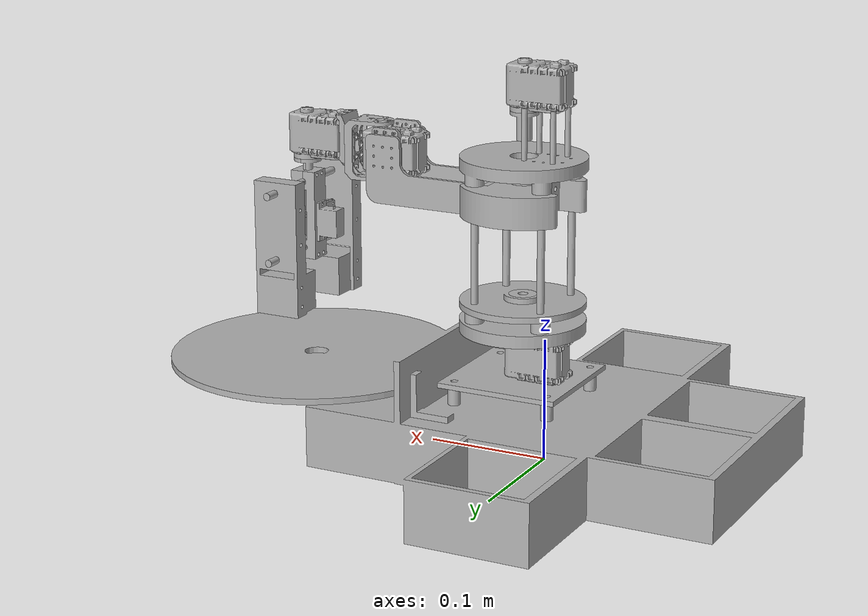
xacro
<?xml version="1.0" ?>
<robot name="scara" xmlns:xacro="http://www.ros.org/wiki/xacro">

<xacro:include filename="$(find scara_description)/urdf/materials.xacro" />
<xacro:include filename="$(find scara_description)/urdf/scara.trans" />
<xacro:include filename="$(find scara_description)/urdf/scara.gazebo" />
<link name="world">
</link>

<link name="base_link">
  <inertial>
    <origin rpy="0 0 0" xyz="0.04098055507239287 -0.0001598330063843479 0.02842913280091773"/>
    <mass value="24.693744487032323"/>
    <inertia ixx="0.120149" ixy="0.000317" ixz="-0.011314" iyy="0.229746" iyz="-1.4e-05" izz="0.335134"/>
  </inertial>
  <visual>
    <origin rpy="0 0 0" xyz="0 0 0"/>
    <geometry>
      <mesh filename="package://scara_description/meshes/base_link.stl" scale="0.001 0.001 0.001"/>
    </geometry>
    <material name="silver"/>
  </visual>
  <collision>
    <origin rpy="0 0 0" xyz="0 0 0"/>
    <geometry>
      <mesh filename="package://scara_description/meshes/base_link.stl" scale="0.001 0.001 0.001"/>
    </geometry>
  </collision>
</link>

<link name="base_spacers_1_1">
  <inertial>
    <origin rpy="0 0 0" xyz="-3.5291908284662554e-13 1.3877787807814457e-17 0.007499999999999972"/>
    <mass value="0.0059187605593633225"/>
    <inertia ixx="0.0" ixy="-0.0" ixz="0.0" iyy="0.0" iyz="0.0" izz="0.0"/>
  </inertial>
  <visual>
    <origin rpy="0 0 0" xyz="0.0211 0.04 -0.05"/>
    <geometry>
      <mesh filename="package://scara_description/meshes/base_spacers_1_1.stl" scale="0.001 0.001 0.001"/>
    </geometry>
    <material name="silver"/>
  </visual>
  <collision>
    <origin rpy="0 0 0" xyz="0.0211 0.04 -0.05"/>
    <geometry>
      <mesh filename="package://scara_description/meshes/base_spacers_1_1.stl" scale="0.001 0.001 0.001"/>
    </geometry>
  </collision>
</link>

<link name="prismatic_top_1">
  <inertial>
    <origin rpy="0 0 0" xyz="-0.028137223323182657 0.028284000000033876 -0.0007283565591307828"/>
    <mass value="0.624700515538458"/>
    <inertia ixx="0.000428" ixy="-0.0" ixz="-0.0" iyy="0.000426" iyz="-0.0" izz="0.000835"/>
  </inertial>
  <visual>
    <origin rpy="0 0 0" xyz="-0.048284 0.028284 -0.241"/>
    <geometry>
      <mesh filename="package://scara_description/meshes/prismatic_top_1.stl" scale="0.001 0.001 0.001"/>
    </geometry>
    <material name="silver"/>
  </visual>
  <collision>
    <origin rpy="0 0 0" xyz="-0.048284 0.028284 -0.241"/>
    <geometry>
      <mesh filename="package://scara_description/meshes/prismatic_top_1.stl" scale="0.001 0.001 0.001"/>
    </geometry>
  </collision>
</link>

<link name="lead_screw_interface_1">
  <inertial>
    <origin rpy="0 0 0" xyz="-0.005749999999894277 0.005749999999999306 0.0020408507566134493"/>
    <mass value="0.008212280147496571"/>
    <inertia ixx="0.0" ixy="-0.0" ixz="0.0" iyy="0.0" iyz="-0.0" izz="1e-06"/>
  </inertial>
  <visual>
    <origin rpy="0 0 0" xyz="-0.02575 0.00575 -0.224854"/>
    <geometry>
      <mesh filename="package://scara_description/meshes/lead_screw_interface_1.stl" scale="0.001 0.001 0.001"/>
    </geometry>
    <material name="silver"/>
  </visual>
  <collision>
    <origin rpy="0 0 0" xyz="-0.02575 0.00575 -0.224854"/>
    <geometry>
      <mesh filename="package://scara_description/meshes/lead_screw_interface_1.stl" scale="0.001 0.001 0.001"/>
    </geometry>
  </collision>
</link>

<link name="m1_link_1">
  <inertial>
    <origin rpy="0 0 0" xyz="0.05199188121380099 0.014999999911798845 -0.000617726368097371"/>
    <mass value="0.20309503106453125"/>
    <inertia ixx="0.000114" ixy="0.0" ixz="-4.6e-05" iyy="0.000312" iyz="0.0" izz="0.000354"/>
  </inertial>
  <visual>
    <origin rpy="0 0 0" xyz="-0.04 0.015 -0.218604"/>
    <geometry>
      <mesh filename="package://scara_description/meshes/m1_link_1.stl" scale="0.001 0.001 0.001"/>
    </geometry>
    <material name="silver"/>
  </visual>
  <collision>
    <origin rpy="0 0 0" xyz="-0.04 0.015 -0.218604"/>
    <geometry>
      <mesh filename="package://scara_description/meshes/m1_link_1.stl" scale="0.001 0.001 0.001"/>
    </geometry>
  </collision>
</link>

<link name="prismatic_link_interface_1">
  <inertial>
    <origin rpy="0 0 0" xyz="-0.02844090670640458 0.028440978811119566 0.056354310270251756"/>
    <mass value="0.999783598473135"/>
    <inertia ixx="0.000918" ixy="-4e-06" ixz="0.0" iyy="0.000366" iyz="0.0" izz="0.001179"/>
  </inertial>
  <visual>
    <origin rpy="0 0 0" xyz="-0.048284 0.028284 -0.156"/>
    <geometry>
      <mesh filename="package://scara_description/meshes/prismatic_link_interface_1.stl" scale="0.001 0.001 0.001"/>
    </geometry>
    <material name="silver"/>
  </visual>
  <collision>
    <origin rpy="0 0 0" xyz="-0.048284 0.028284 -0.156"/>
    <geometry>
      <mesh filename="package://scara_description/meshes/prismatic_link_interface_1.stl" scale="0.001 0.001 0.001"/>
    </geometry>
  </collision>
</link>

<link name="servo_1_1">
  <inertial>
    <origin rpy="0 0 0" xyz="0.017737722029041787 -0.013468907614335956 0.01705858273938929"/>
    <mass value="0.04244091097100989"/>
    <inertia ixx="7e-06" ixy="0.0" ixz="-0.0" iyy="1.2e-05" iyz="-0.0" izz="1e-05"/>
  </inertial>
  <visual>
    <origin rpy="0 0 0" xyz="0.0105 -0.0135 -0.069"/>
    <geometry>
      <mesh filename="package://scara_description/meshes/servo_1_1.stl" scale="0.001 0.001 0.001"/>
    </geometry>
    <material name="silver"/>
  </visual>
  <collision>
    <origin rpy="0 0 0" xyz="0.0105 -0.0135 -0.069"/>
    <geometry>
      <mesh filename="package://scara_description/meshes/servo_1_1.stl" scale="0.001 0.001 0.001"/>
    </geometry>
  </collision>
</link>

<link name="horn_v1_1">
  <inertial>
    <origin rpy="0 0 0" xyz="0.00233939363651281 -7.528689043717618e-14 -3.1535797248571917e-07"/>
    <mass value="0.00024575529409632613"/>
    <inertia ixx="0.0" ixy="0.0" ixz="0.0" iyy="0.0" iyz="-0.0" izz="0.0"/>
  </inertial>
  <visual>
    <origin rpy="0 0 0" xyz="-0.211512 0.0005 -0.177566"/>
    <geometry>
      <mesh filename="package://scara_description/meshes/horn_v1_1.stl" scale="0.001 0.001 0.001"/>
    </geometry>
    <material name="silver"/>
  </visual>
  <collision>
    <origin rpy="0 0 0" xyz="-0.211512 0.0005 -0.177566"/>
    <geometry>
      <mesh filename="package://scara_description/meshes/horn_v1_1.stl" scale="0.001 0.001 0.001"/>
    </geometry>
  </collision>
</link>

<link name="servo_horn_extension_1_1">
  <inertial>
    <origin rpy="0 0 0" xyz="0.0010001688732809988 0.009999999999929657 -3.1535798755699673e-07"/>
    <mass value="0.0022663227698107727"/>
    <inertia ixx="0.0" ixy="0.0" ixz="0.0" iyy="0.0" iyz="-0.0" izz="0.0"/>
  </inertial>
  <visual>
    <origin rpy="0 0 0" xyz="-0.214942 -0.0141 -0.177566"/>
    <geometry>
      <mesh filename="package://scara_description/meshes/servo_horn_extension_1_1.stl" scale="0.001 0.001 0.001"/>
    </geometry>
    <material name="silver"/>
  </visual>
  <collision>
    <origin rpy="0 0 0" xyz="-0.214942 -0.0141 -0.177566"/>
    <geometry>
      <mesh filename="package://scara_description/meshes/servo_horn_extension_1_1.stl" scale="0.001 0.001 0.001"/>
    </geometry>
  </collision>
</link>

<link name="servo_horn_extension_3_1">
  <inertial>
    <origin rpy="0 0 0" xyz="-0.000999831126719114 0.0099999999999198 -3.1535798755699673e-07"/>
    <mass value="0.0022663227698107727"/>
    <inertia ixx="0.0" ixy="0.0" ixz="0.0" iyy="0.0" iyz="-0.0" izz="0.0"/>
  </inertial>
  <visual>
    <origin rpy="0 0 0" xyz="-0.213342 -0.0141 -0.177566"/>
    <geometry>
      <mesh filename="package://scara_description/meshes/servo_horn_extension_3_1.stl" scale="0.001 0.001 0.001"/>
    </geometry>
    <material name="silver"/>
  </visual>
  <collision>
    <origin rpy="0 0 0" xyz="-0.213342 -0.0141 -0.177566"/>
    <geometry>
      <mesh filename="package://scara_description/meshes/servo_horn_extension_3_1.stl" scale="0.001 0.001 0.001"/>
    </geometry>
  </collision>
</link>

<link name="servo_horn_extension_2_1">
  <inertial>
    <origin rpy="0 0 0" xyz="-0.0009998311267075122 -0.010000000000071245 -3.1535800265602987e-07"/>
    <mass value="0.0022663227698107727"/>
    <inertia ixx="0.0" ixy="0.0" ixz="0.0" iyy="0.0" iyz="-0.0" izz="0.0"/>
  </inertial>
  <visual>
    <origin rpy="0 0 0" xyz="-0.213342 0.0151 -0.177566"/>
    <geometry>
      <mesh filename="package://scara_description/meshes/servo_horn_extension_2_1.stl" scale="0.001 0.001 0.001"/>
    </geometry>
    <material name="silver"/>
  </visual>
  <collision>
    <origin rpy="0 0 0" xyz="-0.213342 0.0151 -0.177566"/>
    <geometry>
      <mesh filename="package://scara_description/meshes/servo_horn_extension_2_1.stl" scale="0.001 0.001 0.001"/>
    </geometry>
  </collision>
</link>

<link name="servo_horn_extension_4_1">
  <inertial>
    <origin rpy="0 0 0" xyz="0.0010001688732924618 -0.010000000000070357 -3.153580021564295e-07"/>
    <mass value="0.0022663227698107727"/>
    <inertia ixx="0.0" ixy="0.0" ixz="0.0" iyy="0.0" iyz="-0.0" izz="0.0"/>
  </inertial>
  <visual>
    <origin rpy="0 0 0" xyz="-0.214942 0.0151 -0.177566"/>
    <geometry>
      <mesh filename="package://scara_description/meshes/servo_horn_extension_4_1.stl" scale="0.001 0.001 0.001"/>
    </geometry>
    <material name="silver"/>
  </visual>
  <collision>
    <origin rpy="0 0 0" xyz="-0.214942 0.0151 -0.177566"/>
    <geometry>
      <mesh filename="package://scara_description/meshes/servo_horn_extension_4_1.stl" scale="0.001 0.001 0.001"/>
    </geometry>
  </collision>
</link>

<link name="prismatic_servo_standoffs_4_1">
  <inertial>
    <origin rpy="0 0 0" xyz="-1.3708305324211523e-13 2.914335439641036e-15 0.020250000000028634"/>
    <mass value="0.0033684221227162628"/>
    <inertia ixx="0.0" ixy="0.0" ixz="-0.0" iyy="0.0" iyz="0.0" izz="0.0"/>
  </inertial>
  <visual>
    <origin rpy="0 0 0" xyz="-0.0135 -0.0135 -0.246"/>
    <geometry>
      <mesh filename="package://scara_description/meshes/prismatic_servo_standoffs_4_1.stl" scale="0.001 0.001 0.001"/>
    </geometry>
    <material name="silver"/>
  </visual>
  <collision>
    <origin rpy="0 0 0" xyz="-0.0135 -0.0135 -0.246"/>
    <geometry>
      <mesh filename="package://scara_description/meshes/prismatic_servo_standoffs_4_1.stl" scale="0.001 0.001 0.001"/>
    </geometry>
  </collision>
</link>

<link name="prismatic_servo_standoffs_3_1">
  <inertial>
    <origin rpy="0 0 0" xyz="-1.4011708460159866e-13 2.9160701631170127e-15 0.020250000000028634"/>
    <mass value="0.0033684221227162628"/>
    <inertia ixx="0.0" ixy="0.0" ixz="0.0" iyy="0.0" iyz="0.0" izz="0.0"/>
  </inertial>
  <visual>
    <origin rpy="0 0 0" xyz="0.0105 -0.0135 -0.246"/>
    <geometry>
      <mesh filename="package://scara_description/meshes/prismatic_servo_standoffs_3_1.stl" scale="0.001 0.001 0.001"/>
    </geometry>
    <material name="silver"/>
  </visual>
  <collision>
    <origin rpy="0 0 0" xyz="0.0105 -0.0135 -0.246"/>
    <geometry>
      <mesh filename="package://scara_description/meshes/prismatic_servo_standoffs_3_1.stl" scale="0.001 0.001 0.001"/>
    </geometry>
  </collision>
</link>

<link name="prismatic_servo_standoffs_1_1">
  <inertial>
    <origin rpy="0 0 0" xyz="-1.4011881932507464e-13 -4.85722573273506e-16 0.02025000000002869"/>
    <mass value="0.003368422122716262"/>
    <inertia ixx="0.0" ixy="0.0" ixz="0.0" iyy="0.0" iyz="0.0" izz="0.0"/>
  </inertial>
  <visual>
    <origin rpy="0 0 0" xyz="0.0105 0.0135 -0.246"/>
    <geometry>
      <mesh filename="package://scara_description/meshes/prismatic_servo_standoffs_1_1.stl" scale="0.001 0.001 0.001"/>
    </geometry>
    <material name="silver"/>
  </visual>
  <collision>
    <origin rpy="0 0 0" xyz="0.0105 0.0135 -0.246"/>
    <geometry>
      <mesh filename="package://scara_description/meshes/prismatic_servo_standoffs_1_1.stl" scale="0.001 0.001 0.001"/>
    </geometry>
  </collision>
</link>

<link name="prismatic_servo_standoffs_2_1">
  <inertial>
    <origin rpy="0 0 0" xyz="-1.3708652268906718e-13 -4.77048955893622e-16 0.020250000000028634"/>
    <mass value="0.0033684221227162628"/>
    <inertia ixx="0.0" ixy="0.0" ixz="0.0" iyy="0.0" iyz="0.0" izz="0.0"/>
  </inertial>
  <visual>
    <origin rpy="0 0 0" xyz="-0.0135 0.0135 -0.246"/>
    <geometry>
      <mesh filename="package://scara_description/meshes/prismatic_servo_standoffs_2_1.stl" scale="0.001 0.001 0.001"/>
    </geometry>
    <material name="silver"/>
  </visual>
  <collision>
    <origin rpy="0 0 0" xyz="-0.0135 0.0135 -0.246"/>
    <geometry>
      <mesh filename="package://scara_description/meshes/prismatic_servo_standoffs_2_1.stl" scale="0.001 0.001 0.001"/>
    </geometry>
  </collision>
</link>

<link name="base_spacers_2_1">
  <inertial>
    <origin rpy="0 0 0" xyz="-3.529086745057697e-13 1.3877787807814457e-17 0.007499999999999972"/>
    <mass value="0.0059187605593633225"/>
    <inertia ixx="0.0" ixy="-0.0" ixz="0.0" iyy="0.0" iyz="0.0" izz="0.0"/>
  </inertial>
  <visual>
    <origin rpy="0 0 0" xyz="0.02 -0.04 -0.05"/>
    <geometry>
      <mesh filename="package://scara_description/meshes/base_spacers_2_1.stl" scale="0.001 0.001 0.001"/>
    </geometry>
    <material name="silver"/>
  </visual>
  <collision>
    <origin rpy="0 0 0" xyz="0.02 -0.04 -0.05"/>
    <geometry>
      <mesh filename="package://scara_description/meshes/base_spacers_2_1.stl" scale="0.001 0.001 0.001"/>
    </geometry>
  </collision>
</link>

<link name="base_spacers_3_1">
  <inertial>
    <origin rpy="0 0 0" xyz="-3.5290520505881773e-13 1.3877787807814457e-17 0.007499999999999972"/>
    <mass value="0.0059187605593633225"/>
    <inertia ixx="0.0" ixy="-0.0" ixz="0.0" iyy="0.0" iyz="0.0" izz="0.0"/>
  </inertial>
  <visual>
    <origin rpy="0 0 0" xyz="-0.06 -0.04 -0.05"/>
    <geometry>
      <mesh filename="package://scara_description/meshes/base_spacers_3_1.stl" scale="0.001 0.001 0.001"/>
    </geometry>
    <material name="silver"/>
  </visual>
  <collision>
    <origin rpy="0 0 0" xyz="-0.06 -0.04 -0.05"/>
    <geometry>
      <mesh filename="package://scara_description/meshes/base_spacers_3_1.stl" scale="0.001 0.001 0.001"/>
    </geometry>
  </collision>
</link>

<link name="base_spacers_4_1">
  <inertial>
    <origin rpy="0 0 0" xyz="-3.5291908284662554e-13 1.3877787807814457e-17 0.007499999999999986"/>
    <mass value="0.0059187605593633225"/>
    <inertia ixx="0.0" ixy="-0.0" ixz="0.0" iyy="0.0" iyz="-0.0" izz="0.0"/>
  </inertial>
  <visual>
    <origin rpy="0 0 0" xyz="-0.0589 0.04 -0.05"/>
    <geometry>
      <mesh filename="package://scara_description/meshes/base_spacers_4_1.stl" scale="0.001 0.001 0.001"/>
    </geometry>
    <material name="silver"/>
  </visual>
  <collision>
    <origin rpy="0 0 0" xyz="-0.0589 0.04 -0.05"/>
    <geometry>
      <mesh filename="package://scara_description/meshes/base_spacers_4_1.stl" scale="0.001 0.001 0.001"/>
    </geometry>
  </collision>
</link>

<link name="lower_servo_housing_1">
  <inertial>
    <origin rpy="0 0 0" xyz="-0.0061101239303172905 -0.0039000000000329895 -0.028236386254481632"/>
    <mass value="0.07090622458440883"/>
    <inertia ixx="4.9e-05" ixy="-0.0" ixz="-1e-06" iyy="4.8e-05" iyz="0.0" izz="3e-06"/>
  </inertial>
  <visual>
    <origin rpy="0 0 0" xyz="-0.213912 -0.0034 -0.211116"/>
    <geometry>
      <mesh filename="package://scara_description/meshes/lower_servo_housing_1.stl" scale="0.001 0.001 0.001"/>
    </geometry>
    <material name="silver"/>
  </visual>
  <collision>
    <origin rpy="0 0 0" xyz="-0.213912 -0.0034 -0.211116"/>
    <geometry>
      <mesh filename="package://scara_description/meshes/lower_servo_housing_1.stl" scale="0.001 0.001 0.001"/>
    </geometry>
  </collision>
</link>

<link name="microsg9_1_1">
  <inertial>
    <origin rpy="0 0 0" xyz="-0.00608184495381614 1.8860040143118748e-09 -0.013486331593379752"/>
    <mass value="0.05498776027444273"/>
    <inertia ixx="3e-06" ixy="-0.0" ixz="-0.0" iyy="5e-06" iyz="-0.0" izz="4e-06"/>
  </inertial>
  <visual>
    <origin rpy="0 0 0" xyz="-0.203212 0.0005 -0.186066"/>
    <geometry>
      <mesh filename="package://scara_description/meshes/microsg9_1_1.stl" scale="0.001 0.001 0.001"/>
    </geometry>
    <material name="silver"/>
  </visual>
  <collision>
    <origin rpy="0 0 0" xyz="-0.203212 0.0005 -0.186066"/>
    <geometry>
      <mesh filename="package://scara_description/meshes/microsg9_1_1.stl" scale="0.001 0.001 0.001"/>
    </geometry>
  </collision>
</link>

<link name="linear_motion_rail_1_1">
  <inertial>
    <origin rpy="0 0 0" xyz="1.6887328374570743e-07 -8.509458328948005e-14 -3.1535799438486833e-07"/>
    <mass value="0.028410050684943296"/>
    <inertia ixx="3.9e-05" ixy="0.0" ixz="0.0" iyy="0.0" iyz="-0.0" izz="3.9e-05"/>
  </inertial>
  <visual>
    <origin rpy="0 0 0" xyz="-0.213912 0.0005 -0.205116"/>
    <geometry>
      <mesh filename="package://scara_description/meshes/linear_motion_rail_1_1.stl" scale="0.001 0.001 0.001"/>
    </geometry>
    <material name="silver"/>
  </visual>
  <collision>
    <origin rpy="0 0 0" xyz="-0.213912 0.0005 -0.205116"/>
    <geometry>
      <mesh filename="package://scara_description/meshes/linear_motion_rail_1_1.stl" scale="0.001 0.001 0.001"/>
    </geometry>
  </collision>
</link>

<link name="linear_motion_rail_2_1">
  <inertial>
    <origin rpy="0 0 0" xyz="1.6887328910253352e-07 -6.848569020917461e-14 -3.153579943293572e-07"/>
    <mass value="0.028410050684943296"/>
    <inertia ixx="3.9e-05" ixy="0.0" ixz="0.0" iyy="0.0" iyz="-0.0" izz="3.9e-05"/>
  </inertial>
  <visual>
    <origin rpy="0 0 0" xyz="-0.213912 0.0005 -0.150516"/>
    <geometry>
      <mesh filename="package://scara_description/meshes/linear_motion_rail_2_1.stl" scale="0.001 0.001 0.001"/>
    </geometry>
    <material name="silver"/>
  </visual>
  <collision>
    <origin rpy="0 0 0" xyz="-0.213912 0.0005 -0.150516"/>
    <geometry>
      <mesh filename="package://scara_description/meshes/linear_motion_rail_2_1.stl" scale="0.001 0.001 0.001"/>
    </geometry>
  </collision>
</link>

<link name="side_connection_2_1">
  <inertial>
    <origin rpy="0 0 0" xyz="0.21450016887328938 0.11927214315760507 -0.22077970063579894"/>
    <mass value="0.57885885536208"/>
    <inertia ixx="0.000673" ixy="-0.0" ixz="0.0" iyy="0.000697" iyz="7.4e-05" izz="0.000108"/>
  </inertial>
  <visual>
    <origin rpy="0 0 0" xyz="0.000588 0.160412 -0.370231"/>
    <geometry>
      <mesh filename="package://scara_description/meshes/side_connection_2_1.stl" scale="0.001 0.001 0.001"/>
    </geometry>
    <material name="silver"/>
  </visual>
  <collision>
    <origin rpy="0 0 0" xyz="0.000588 0.160412 -0.370231"/>
    <geometry>
      <mesh filename="package://scara_description/meshes/side_connection_2_1.stl" scale="0.001 0.001 0.001"/>
    </geometry>
  </collision>
</link>

<link name="side_connection_1_1">
  <inertial>
    <origin rpy="0 0 0" xyz="0.08650016887328882 0.2005518568422578 -0.2207797006357743"/>
    <mass value="0.5788588553620798"/>
    <inertia ixx="0.000673" ixy="0.0" ixz="0.0" iyy="0.000697" iyz="-7.4e-05" izz="0.000108"/>
  </inertial>
  <visual>
    <origin rpy="0 0 0" xyz="-0.127412 0.160412 -0.370231"/>
    <geometry>
      <mesh filename="package://scara_description/meshes/side_connection_1_1.stl" scale="0.001 0.001 0.001"/>
    </geometry>
    <material name="silver"/>
  </visual>
  <collision>
    <origin rpy="0 0 0" xyz="-0.127412 0.160412 -0.370231"/>
    <geometry>
      <mesh filename="package://scara_description/meshes/side_connection_1_1.stl" scale="0.001 0.001 0.001"/>
    </geometry>
  </collision>
</link>

<link name="upper_servo_housing_1">
  <inertial>
    <origin rpy="0 0 0" xyz="0.006600449857643964 -7.900505336749797e-14 -0.04335454786903861"/>
    <mass value="0.07409792845105563"/>
    <inertia ixx="4.9e-05" ixy="0.0" ixz="1e-06" iyy="4.8e-05" iyz="0.0" izz="3e-06"/>
  </inertial>
  <visual>
    <origin rpy="0 0 0" xyz="-0.213912 0.0005 -0.224616"/>
    <geometry>
      <mesh filename="package://scara_description/meshes/upper_servo_housing_1.stl" scale="0.001 0.001 0.001"/>
    </geometry>
    <material name="silver"/>
  </visual>
  <collision>
    <origin rpy="0 0 0" xyz="-0.213912 0.0005 -0.224616"/>
    <geometry>
      <mesh filename="package://scara_description/meshes/upper_servo_housing_1.stl" scale="0.001 0.001 0.001"/>
    </geometry>
  </collision>
</link>

<link name="608_bearing_1">
  <inertial>
    <origin rpy="0 0 0" xyz="6.050715484207103e-14 2.271819970785277e-17 0.0035000000000050824"/>
    <mass value="0.019086461460050417"/>
    <inertia ixx="1e-06" ixy="-0.0" ixz="-0.0" iyy="1e-06" iyz="-0.0" izz="1e-06"/>
  </inertial>
  <visual>
    <origin rpy="0 0 0" xyz="-0.02 -0.0 -0.1285"/>
    <geometry>
      <mesh filename="package://scara_description/meshes/608_bearing_1.stl" scale="0.001 0.001 0.001"/>
    </geometry>
    <material name="silver"/>
  </visual>
  <collision>
    <origin rpy="0 0 0" xyz="-0.02 -0.0 -0.1285"/>
    <geometry>
      <mesh filename="package://scara_description/meshes/608_bearing_1.stl" scale="0.001 0.001 0.001"/>
    </geometry>
  </collision>
</link>

<link name="lead_screw_bottom_plate_1">
  <inertial>
    <origin rpy="0 0 0" xyz="-0.0282839999998628 0.028284000000000017 0.002637274347841445"/>
    <mass value="0.30695093010270136"/>
    <inertia ixx="0.000191" ixy="-0.0" ixz="0.0" iyy="0.000191" iyz="0.0" izz="0.00038"/>
  </inertial>
  <visual>
    <origin rpy="0 0 0" xyz="-0.048284 0.028284 -0.126"/>
    <geometry>
      <mesh filename="package://scara_description/meshes/lead_screw_bottom_plate_1.stl" scale="0.001 0.001 0.001"/>
    </geometry>
    <material name="silver"/>
  </visual>
  <collision>
    <origin rpy="0 0 0" xyz="-0.048284 0.028284 -0.126"/>
    <geometry>
      <mesh filename="package://scara_description/meshes/lead_screw_bottom_plate_1.stl" scale="0.001 0.001 0.001"/>
    </geometry>
  </collision>
</link>

<link name="prismatic_rod_1">
  <inertial>
    <origin rpy="0 0 0" xyz="2.71247465398472e-07 -2.712474654054109e-07 0.06500000000001362"/>
    <mass value="0.02885395772689541"/>
    <inertia ixx="4.1e-05" ixy="-0.0" ixz="0.0" iyy="4.1e-05" iyz="-0.0" izz="0.0"/>
  </inertial>
  <visual>
    <origin rpy="0 0 0" xyz="-0.048284 0.028284 -0.111"/>
    <geometry>
      <mesh filename="package://scara_description/meshes/prismatic_rod_1.stl" scale="0.001 0.001 0.001"/>
    </geometry>
    <material name="silver"/>
  </visual>
  <collision>
    <origin rpy="0 0 0" xyz="-0.048284 0.028284 -0.111"/>
    <geometry>
      <mesh filename="package://scara_description/meshes/prismatic_rod_1.stl" scale="0.001 0.001 0.001"/>
    </geometry>
  </collision>
</link>

<link name="prismatic_rod_3">
  <inertial>
    <origin rpy="0 0 0" xyz="-2.71247465398472e-07 -2.712474654054109e-07 0.0650000000000137"/>
    <mass value="0.02885395772689541"/>
    <inertia ixx="4.1e-05" ixy="-0.0" ixz="0.0" iyy="4.1e-05" iyz="-0.0" izz="0.0"/>
  </inertial>
  <visual>
    <origin rpy="0 0 0" xyz="0.008284 0.028284 -0.111"/>
    <geometry>
      <mesh filename="package://scara_description/meshes/prismatic_rod_3.stl" scale="0.001 0.001 0.001"/>
    </geometry>
    <material name="silver"/>
  </visual>
  <collision>
    <origin rpy="0 0 0" xyz="0.008284 0.028284 -0.111"/>
    <geometry>
      <mesh filename="package://scara_description/meshes/prismatic_rod_3.stl" scale="0.001 0.001 0.001"/>
    </geometry>
  </collision>
</link>

<link name="prismatic_rod_2">
  <inertial>
    <origin rpy="0 0 0" xyz="2.7124746545398315e-07 2.7124746540194145e-07 0.06500000000001356"/>
    <mass value="0.02885395772689541"/>
    <inertia ixx="4.1e-05" ixy="-0.0" ixz="0.0" iyy="4.1e-05" iyz="0.0" izz="0.0"/>
  </inertial>
  <visual>
    <origin rpy="0 0 0" xyz="-0.048284 -0.028284 -0.111"/>
    <geometry>
      <mesh filename="package://scara_description/meshes/prismatic_rod_2.stl" scale="0.001 0.001 0.001"/>
    </geometry>
    <material name="silver"/>
  </visual>
  <collision>
    <origin rpy="0 0 0" xyz="-0.048284 -0.028284 -0.111"/>
    <geometry>
      <mesh filename="package://scara_description/meshes/prismatic_rod_2.stl" scale="0.001 0.001 0.001"/>
    </geometry>
  </collision>
</link>

<link name="prismatic_rod_4">
  <inertial>
    <origin rpy="0 0 0" xyz="-2.7124746546959566e-07 2.712474654366359e-07 0.06500000000001362"/>
    <mass value="0.02885395772689541"/>
    <inertia ixx="4.1e-05" ixy="-0.0" ixz="0.0" iyy="4.1e-05" iyz="-0.0" izz="0.0"/>
  </inertial>
  <visual>
    <origin rpy="0 0 0" xyz="0.008284 -0.028284 -0.111"/>
    <geometry>
      <mesh filename="package://scara_description/meshes/prismatic_rod_4.stl" scale="0.001 0.001 0.001"/>
    </geometry>
    <material name="silver"/>
  </visual>
  <collision>
    <origin rpy="0 0 0" xyz="0.008284 -0.028284 -0.111"/>
    <geometry>
      <mesh filename="package://scara_description/meshes/prismatic_rod_4.stl" scale="0.001 0.001 0.001"/>
    </geometry>
  </collision>
</link>

<link name="prismatic_bottom_1">
  <inertial>
    <origin rpy="0 0 0" xyz="7.427392034742297e-14 8.702372613586493e-17 0.005694878612804946"/>
    <mass value="0.6547974129828106"/>
    <inertia ixx="0.00043" ixy="0.0" ixz="0.0" iyy="0.00043" iyz="0.0" izz="0.00084"/>
  </inertial>
  <visual>
    <origin rpy="0 0 0" xyz="-0.02 -0.0 -0.106"/>
    <geometry>
      <mesh filename="package://scara_description/meshes/prismatic_bottom_1.stl" scale="0.001 0.001 0.001"/>
    </geometry>
    <material name="silver"/>
  </visual>
  <collision>
    <origin rpy="0 0 0" xyz="-0.02 -0.0 -0.106"/>
    <geometry>
      <mesh filename="package://scara_description/meshes/prismatic_bottom_1.stl" scale="0.001 0.001 0.001"/>
    </geometry>
  </collision>
</link>

<link name="fp04_f2_1_1">
  <inertial>
    <origin rpy="0 0 0" xyz="0.01508028274136311 2.284864526847538e-06 0.02099968464211277"/>
    <mass value="0.057238335357429025"/>
    <inertia ixx="2.3e-05" ixy="-0.0" ixz="0.0" iyy="2.5e-05" iyz="0.0" izz="1e-05"/>
  </inertial>
  <visual>
    <origin rpy="0 0 0" xyz="-0.146412 0.0005 -0.216616"/>
    <geometry>
      <mesh filename="package://scara_description/meshes/fp04_f2_1_1.stl" scale="0.001 0.001 0.001"/>
    </geometry>
    <material name="silver"/>
  </visual>
  <collision>
    <origin rpy="0 0 0" xyz="-0.146412 0.0005 -0.216616"/>
    <geometry>
      <mesh filename="package://scara_description/meshes/fp04_f2_1_1.stl" scale="0.001 0.001 0.001"/>
    </geometry>
  </collision>
</link>

<link name="fp04_f6_1_1">
  <inertial>
    <origin rpy="0 0 0" xyz="-0.007999831126722146 0.003162426375285599 0.016031725393745366"/>
    <mass value="0.02417691266422109"/>
    <inertia ixx="4e-06" ixy="0.0" ixz="0.0" iyy="5e-06" iyz="-0.0" izz="1e-06"/>
  </inertial>
  <visual>
    <origin rpy="0 0 0" xyz="-0.139912 -0.013 -0.221616"/>
    <geometry>
      <mesh filename="package://scara_description/meshes/fp04_f6_1_1.stl" scale="0.001 0.001 0.001"/>
    </geometry>
    <material name="silver"/>
  </visual>
  <collision>
    <origin rpy="0 0 0" xyz="-0.139912 -0.013 -0.221616"/>
    <geometry>
      <mesh filename="package://scara_description/meshes/fp04_f6_1_1.stl" scale="0.001 0.001 0.001"/>
    </geometry>
  </collision>
</link>

<link name="servo_3_1">
  <inertial>
    <origin rpy="0 0 0" xyz="-0.006262109097683488 0.013468907614331579 0.014941101902721271"/>
    <mass value="0.04244091097100989"/>
    <inertia ixx="7e-06" ixy="-0.0" ixz="0.0" iyy="1.2e-05" iyz="-0.0" izz="1e-05"/>
  </inertial>
  <visual>
    <origin rpy="0 0 0" xyz="-0.139912 0.014 -0.221616"/>
    <geometry>
      <mesh filename="package://scara_description/meshes/servo_3_1.stl" scale="0.001 0.001 0.001"/>
    </geometry>
    <material name="silver"/>
  </visual>
  <collision>
    <origin rpy="0 0 0" xyz="-0.139912 0.014 -0.221616"/>
    <geometry>
      <mesh filename="package://scara_description/meshes/servo_3_1.stl" scale="0.001 0.001 0.001"/>
    </geometry>
  </collision>
</link>

<link name="servo_4_1">
  <inertial>
    <origin rpy="0 0 0" xyz="0.023237890902313346 0.007968907614231729 -0.017058898097368824"/>
    <mass value="0.04244091097100989"/>
    <inertia ixx="7e-06" ixy="-0.0" ixz="0.0" iyy="1.2e-05" iyz="-0.0" izz="1e-05"/>
  </inertial>
  <visual>
    <origin rpy="0 0 0" xyz="-0.177912 0.0085 -0.261616"/>
    <geometry>
      <mesh filename="package://scara_description/meshes/servo_4_1.stl" scale="0.001 0.001 0.001"/>
    </geometry>
    <material name="silver"/>
  </visual>
  <collision>
    <origin rpy="0 0 0" xyz="-0.177912 0.0085 -0.261616"/>
    <geometry>
      <mesh filename="package://scara_description/meshes/servo_4_1.stl" scale="0.001 0.001 0.001"/>
    </geometry>
  </collision>
</link>

<link name="fp04_f6_3_1">
  <inertial>
    <origin rpy="0 0 0" xyz="0.00233774249798116 0.007999999999990232 -0.00803235610952141"/>
    <mass value="0.02417691266422109"/>
    <inertia ixx="5e-06" ixy="0.0" ixz="-0.0" iyy="4e-06" iyz="0.0" izz="1e-06"/>
  </inertial>
  <visual>
    <origin rpy="0 0 0" xyz="-0.172412 0.0085 -0.253616"/>
    <geometry>
      <mesh filename="package://scara_description/meshes/fp04_f6_3_1.stl" scale="0.001 0.001 0.001"/>
    </geometry>
    <material name="silver"/>
  </visual>
  <collision>
    <origin rpy="0 0 0" xyz="-0.172412 0.0085 -0.253616"/>
    <geometry>
      <mesh filename="package://scara_description/meshes/fp04_f6_3_1.stl" scale="0.001 0.001 0.001"/>
    </geometry>
  </collision>
</link>

<link name="fp04_f6_2_1">
  <inertial>
    <origin rpy="0 0 0" xyz="-0.007999831126730333 0.0023375736247070143 -0.007968274606256293"/>
    <mass value="0.02417691266422109"/>
    <inertia ixx="4e-06" ixy="0.0" ixz="-0.0" iyy="5e-06" iyz="0.0" izz="1e-06"/>
  </inertial>
  <visual>
    <origin rpy="0 0 0" xyz="-0.139912 0.0195 -0.245616"/>
    <geometry>
      <mesh filename="package://scara_description/meshes/fp04_f6_2_1.stl" scale="0.001 0.001 0.001"/>
    </geometry>
    <material name="silver"/>
  </visual>
  <collision>
    <origin rpy="0 0 0" xyz="-0.139912 0.0195 -0.245616"/>
    <geometry>
      <mesh filename="package://scara_description/meshes/fp04_f6_2_1.stl" scale="0.001 0.001 0.001"/>
    </geometry>
  </collision>
</link>

<link name="coupler_1">
  <inertial>
    <origin rpy="0 0 0" xyz="-3.5099007034133933e-13 8.577654583935049e-14 -0.0076807187545927524"/>
    <mass value="0.018354323376430018"/>
    <inertia ixx="1e-06" ixy="-0.0" ixz="0.0" iyy="1e-06" iyz="-0.0" izz="1e-06"/>
  </inertial>
  <visual>
    <origin rpy="0 0 0" xyz="-0.02 0.0 -0.2815"/>
    <geometry>
      <mesh filename="package://scara_description/meshes/coupler_1.stl" scale="0.001 0.001 0.001"/>
    </geometry>
    <material name="silver"/>
  </visual>
  <collision>
    <origin rpy="0 0 0" xyz="-0.02 0.0 -0.2815"/>
    <geometry>
      <mesh filename="package://scara_description/meshes/coupler_1.stl" scale="0.001 0.001 0.001"/>
    </geometry>
  </collision>
</link>

<link name="servo_2_1">
  <inertial>
    <origin rpy="0 0 0" xyz="-0.006262277970959033 0.013468907614335501 0.014941417260641021"/>
    <mass value="0.04244091097100989"/>
    <inertia ixx="7e-06" ixy="-0.0" ixz="0.0" iyy="1.2e-05" iyz="-0.0" izz="1e-05"/>
  </inertial>
  <visual>
    <origin rpy="0 0 0" xyz="-0.0135 0.0135 -0.2865"/>
    <geometry>
      <mesh filename="package://scara_description/meshes/servo_2_1.stl" scale="0.001 0.001 0.001"/>
    </geometry>
    <material name="silver"/>
  </visual>
  <collision>
    <origin rpy="0 0 0" xyz="-0.0135 0.0135 -0.2865"/>
    <geometry>
      <mesh filename="package://scara_description/meshes/servo_2_1.stl" scale="0.001 0.001 0.001"/>
    </geometry>
  </collision>
</link>

<link name="base_mount_1">
  <inertial>
    <origin rpy="0 0 0" xyz="0.041715650029567494 0.04 0.0020000000000000018"/>
    <mass value="0.29835318208121786"/>
    <inertia ixx="0.000256" ixy="0.0" ixz="0.0" iyy="0.000252" iyz="-0.0" izz="0.000507"/>
  </inertial>
  <visual>
    <origin rpy="0 0 0" xyz="0.0211 0.04 -0.065"/>
    <geometry>
      <mesh filename="package://scara_description/meshes/base_mount_1.stl" scale="0.001 0.001 0.001"/>
    </geometry>
    <material name="silver"/>
  </visual>
  <collision>
    <origin rpy="0 0 0" xyz="0.0211 0.04 -0.065"/>
    <geometry>
      <mesh filename="package://scara_description/meshes/base_mount_1.stl" scale="0.001 0.001 0.001"/>
    </geometry>
  </collision>
</link>

<joint name="world_connect" type="fixed">
	<parent link="world"/>
	<child link="base_link"/>
</joint>

<joint name="Rigid1" type="fixed">
  <origin rpy="0 0 0" xyz="-0.0211 -0.04 0.05"/>
  <parent link="base_link"/>
  <child link="base_spacers_1_1"/>
</joint>

<joint name="Rigid17" type="fixed">
  <origin rpy="0 0 0" xyz="0.0 0.0 0.13"/>
  <parent link="prismatic_rod_1"/>
  <child link="prismatic_top_1"/>
</joint>

<joint name="Rigid20" type="fixed">
  <origin rpy="0 0 0" xyz="-0.022534 0.022534 0.068854"/>
  <parent link="prismatic_link_interface_1"/>
  <child link="lead_screw_interface_1"/>
</joint>

<joint name="Rigid37" type="fixed">
  <origin rpy="0 0 0" xyz="-0.008284 0.013284 0.062604"/>
  <parent link="prismatic_link_interface_1"/>
  <child link="m1_link_1"/>
</joint>

<joint name="Slider38" type="prismatic">
  <origin rpy="0 0 0" xyz="0.0 0.0 0.045"/>
  <parent link="prismatic_rod_1"/>
  <child link="prismatic_link_interface_1"/>
  <axis xyz="-0.0 0.0 1.0"/>
  <limit effort="100" lower="0.0" upper="0.064" velocity="100"/>
</joint>

<joint name="Rigid61" type="fixed">
  <origin rpy="0 0 0" xyz="0.0106 0.0535 0.004"/>
  <parent link="base_mount_1"/>
  <child link="servo_1_1"/>
</joint>

<joint name="Rev74" type="revolute">
  <origin rpy="0 0 0" xyz="0.0083 0.0 -0.0085"/>
  <parent link="microsg9_1_1"/>
  <child link="horn_v1_1"/>
  <axis xyz="1.0 0.0 0.0"/>
  <limit effort="100" lower="0.0" upper="1.570796" velocity="100"/>
</joint>

<joint name="Rev77" type="continuous">
  <origin rpy="0 0 0" xyz="0.00343 0.0146 0.0"/>
  <parent link="horn_v1_1"/>
  <child link="servo_horn_extension_1_1"/>
  <axis xyz="1.0 0.0 0.0"/>
</joint>

<joint name="Rev78" type="continuous">
  <origin rpy="0 0 0" xyz="0.00183 0.0146 0.0"/>
  <parent link="horn_v1_1"/>
  <child link="servo_horn_extension_3_1"/>
  <axis xyz="1.0 0.0 0.0"/>
</joint>

<joint name="Rev79" type="continuous">
  <origin rpy="0 0 0" xyz="0.00183 -0.0146 0.0"/>
  <parent link="horn_v1_1"/>
  <child link="servo_horn_extension_2_1"/>
  <axis xyz="1.0 0.0 0.0"/>
</joint>

<joint name="Rev80" type="continuous">
  <origin rpy="0 0 0" xyz="0.00343 -0.0146 0.0"/>
  <parent link="horn_v1_1"/>
  <child link="servo_horn_extension_4_1"/>
  <axis xyz="1.0 0.0 0.0"/>
</joint>

<joint name="Rigid92" type="fixed">
  <origin rpy="0 0 0" xyz="-0.034784 0.041784 0.005"/>
  <parent link="prismatic_top_1"/>
  <child link="prismatic_servo_standoffs_4_1"/>
</joint>

<joint name="Rigid93" type="fixed">
  <origin rpy="0 0 0" xyz="-0.058784 0.041784 0.005"/>
  <parent link="prismatic_top_1"/>
  <child link="prismatic_servo_standoffs_3_1"/>
</joint>

<joint name="Rigid94" type="fixed">
  <origin rpy="0 0 0" xyz="-0.058784 0.014784 0.005"/>
  <parent link="prismatic_top_1"/>
  <child link="prismatic_servo_standoffs_1_1"/>
</joint>

<joint name="Rigid95" type="fixed">
  <origin rpy="0 0 0" xyz="-0.034784 0.014784 0.005"/>
  <parent link="prismatic_top_1"/>
  <child link="prismatic_servo_standoffs_2_1"/>
</joint>

<joint name="Rigid97" type="fixed">
  <origin rpy="0 0 0" xyz="-0.02 0.04 0.05"/>
  <parent link="base_link"/>
  <child link="base_spacers_2_1"/>
</joint>

<joint name="Rigid99" type="fixed">
  <origin rpy="0 0 0" xyz="0.06 0.04 0.05"/>
  <parent link="base_link"/>
  <child link="base_spacers_3_1"/>
</joint>

<joint name="Rigid101" type="fixed">
  <origin rpy="0 0 0" xyz="0.0589 -0.04 0.05"/>
  <parent link="base_link"/>
  <child link="base_spacers_4_1"/>
</joint>

<joint name="Rigid102" type="fixed">
  <origin rpy="0 0 0" xyz="0.0 0.0039 -0.0135"/>
  <parent link="upper_servo_housing_1"/>
  <child link="lower_servo_housing_1"/>
</joint>

<joint name="Rigid103" type="fixed">
  <origin rpy="0 0 0" xyz="-0.0107 -0.0039 -0.02505"/>
  <parent link="lower_servo_housing_1"/>
  <child link="microsg9_1_1"/>
</joint>

<joint name="Slider104" type="prismatic">
  <origin rpy="0 0 0" xyz="0.0 0.0 -0.0195"/>
  <parent link="upper_servo_housing_1"/>
  <child link="linear_motion_rail_1_1"/>
  <axis xyz="-0.0 1.0 0.0"/>
  <limit effort="100" lower="0.0" upper="0.0" velocity="100"/>
</joint>

<joint name="Slider105" type="prismatic">
  <origin rpy="0 0 0" xyz="0.0 0.0 -0.0741"/>
  <parent link="upper_servo_housing_1"/>
  <child link="linear_motion_rail_2_1"/>
  <axis xyz="-0.0 1.0 0.0"/>
  <limit effort="100" lower="0.0" upper="0.0" velocity="100"/>
</joint>

<joint name="Slider106" type="prismatic">
  <origin rpy="0 0 0" xyz="-0.2145 -0.159912 0.165115"/>
  <parent link="linear_motion_rail_1_1"/>
  <child link="side_connection_2_1"/>
  <axis xyz="0.0 -1.0 -0.0"/>
  <limit effort="100" lower="0.0" upper="0.0" velocity="100"/>
</joint>

<joint name="Slider107" type="prismatic">
  <origin rpy="0 0 0" xyz="-0.0865 -0.159912 0.165115"/>
  <parent link="linear_motion_rail_1_1"/>
  <child link="side_connection_1_1"/>
  <axis xyz="0.0 -1.0 -0.0"/>
  <limit effort="100" lower="0.0" upper="0.0" velocity="100"/>
</joint>

<joint name="Rev110" type="continuous">
  <origin rpy="0 0 0" xyz="0.036 0.008 -0.037"/>
  <parent link="servo_4_1"/>
  <child link="upper_servo_housing_1"/>
  <axis xyz="0.0 0.0 -1.0"/>
</joint>

<joint name="Rigid112" type="fixed">
  <origin rpy="0 0 0" xyz="-0.028284 0.028284 0.0025"/>
  <parent link="lead_screw_bottom_plate_1"/>
  <child link="608_bearing_1"/>
</joint>

<joint name="Rigid118" type="fixed">
  <origin rpy="0 0 0" xyz="0.028284 -0.028284 0.02"/>
  <parent link="prismatic_bottom_1"/>
  <child link="lead_screw_bottom_plate_1"/>
</joint>

<joint name="Rigid119" type="fixed">
  <origin rpy="0 0 0" xyz="0.028284 -0.028284 0.005"/>
  <parent link="prismatic_bottom_1"/>
  <child link="prismatic_rod_1"/>
</joint>

<joint name="Rigid120" type="fixed">
  <origin rpy="0 0 0" xyz="-0.028284 -0.028284 0.005"/>
  <parent link="prismatic_bottom_1"/>
  <child link="prismatic_rod_3"/>
</joint>

<joint name="Rigid121" type="fixed">
  <origin rpy="0 0 0" xyz="0.028284 0.028284 0.005"/>
  <parent link="prismatic_bottom_1"/>
  <child link="prismatic_rod_2"/>
</joint>

<joint name="Rigid122" type="fixed">
  <origin rpy="0 0 0" xyz="-0.028284 0.028284 0.005"/>
  <parent link="prismatic_bottom_1"/>
  <child link="prismatic_rod_4"/>
</joint>

<joint name="Rev123" type="continuous">
  <origin rpy="0 0 0" xyz="0.0305 -0.0135 0.037"/>
  <parent link="servo_1_1"/>
  <child link="prismatic_bottom_1"/>
  <axis xyz="0.0 0.0 1.0"/>
</joint>

<joint name="Rev126" type="continuous">
  <origin rpy="0 0 0" xyz="0.0065 0.0135 -0.005"/>
  <parent link="servo_3_1"/>
  <child link="fp04_f2_1_1"/>
  <axis xyz="-0.0 0.0 -1.0"/>
</joint>

<joint name="Rigid130" type="fixed">
  <origin rpy="0 0 0" xyz="0.0 0.027 0.0"/>
  <parent link="servo_3_1"/>
  <child link="fp04_f6_1_1"/>
</joint>

<joint name="Rigid131" type="fixed">
  <origin rpy="0 0 0" xyz="0.0 0.0055 -0.024"/>
  <parent link="fp04_f6_2_1"/>
  <child link="servo_3_1"/>
</joint>

<joint name="Rigid133" type="fixed">
  <origin rpy="0 0 0" xyz="0.0055 0.0 0.008"/>
  <parent link="fp04_f6_3_1"/>
  <child link="servo_4_1"/>
</joint>

<joint name="Rigid134" type="fixed">
  <origin rpy="0 0 0" xyz="0.026 -0.008 0.037"/>
  <parent link="fp04_f2_1_1"/>
  <child link="fp04_f6_3_1"/>
</joint>

<joint name="Rigid135" type="fixed">
  <origin rpy="0 0 0" xyz="0.099912 -0.0045 0.027012"/>
  <parent link="m1_link_1"/>
  <child link="fp04_f6_2_1"/>
</joint>

<joint name="Rev138" type="continuous">
  <origin rpy="0 0 0" xyz="0.0065 0.0135 -0.005"/>
  <parent link="servo_2_1"/>
  <child link="coupler_1"/>
  <axis xyz="0.0 -0.0 -1.0"/>
</joint>

<joint name="Rigid139" type="fixed">
  <origin rpy="0 0 0" xyz="0.0 0.0 0.0405"/>
  <parent link="prismatic_servo_standoffs_2_1"/>
  <child link="servo_2_1"/>
</joint>

<joint name="Rigid140" type="fixed">
  <origin rpy="0 0 0" xyz="0.0 0.0 0.015"/>
  <parent link="base_spacers_1_1"/>
  <child link="base_mount_1"/>
</joint>

</robot>

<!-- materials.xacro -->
<robot name="scara_simple" xmlns:xacro="http://www.ros.org/wiki/xacro" >

<material name="silver">
  <color rgba="0.700 0.700 0.700 1.000"/>
</material>

</robot>

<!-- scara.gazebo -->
<robot name="scara" xmlns:xacro="http://www.ros.org/wiki/xacro" >

<xacro:property name="body_color" value="Gazebo/Silver" />

<gazebo>
  <plugin filename="libgazebo_ros_control.so" name="control"/>
</gazebo>
<gazebo reference="base_link">
  <material>${body_color}</material>
  <mu1>0.2</mu1>
  <mu2>0.2</mu2>
  <selfCollide>true</selfCollide>
  <gravity>true</gravity>
</gazebo>

<gazebo reference="base_spacers_1_1">
  <material>${body_color}</material>
  <mu1>0.2</mu1>
  <mu2>0.2</mu2>
  <selfCollide>true</selfCollide>
</gazebo>

<gazebo reference="prismatic_top_1">
  <material>${body_color}</material>
  <mu1>0.2</mu1>
  <mu2>0.2</mu2>
  <selfCollide>true</selfCollide>
</gazebo>

<gazebo reference="lead_screw_interface_1">
  <material>${body_color}</material>
  <mu1>0.2</mu1>
  <mu2>0.2</mu2>
  <selfCollide>true</selfCollide>
</gazebo>

<gazebo reference="m1_link_1">
  <material>${body_color}</material>
  <mu1>0.2</mu1>
  <mu2>0.2</mu2>
  <selfCollide>true</selfCollide>
</gazebo>

<gazebo reference="prismatic_link_interface_1">
  <material>${body_color}</material>
  <mu1>0.2</mu1>
  <mu2>0.2</mu2>
  <selfCollide>true</selfCollide>
</gazebo>

<gazebo reference="servo_1_1">
  <material>${body_color}</material>
  <mu1>0.2</mu1>
  <mu2>0.2</mu2>
  <selfCollide>true</selfCollide>
</gazebo>

<gazebo reference="horn_v1_1">
  <material>${body_color}</material>
  <mu1>0.2</mu1>
  <mu2>0.2</mu2>
  <selfCollide>true</selfCollide>
</gazebo>

<gazebo reference="servo_horn_extension_1_1">
  <material>${body_color}</material>
  <mu1>0.2</mu1>
  <mu2>0.2</mu2>
  <selfCollide>true</selfCollide>
</gazebo>

<gazebo reference="servo_horn_extension_3_1">
  <material>${body_color}</material>
  <mu1>0.2</mu1>
  <mu2>0.2</mu2>
  <selfCollide>true</selfCollide>
</gazebo>

<gazebo reference="servo_horn_extension_2_1">
  <material>${body_color}</material>
  <mu1>0.2</mu1>
  <mu2>0.2</mu2>
  <selfCollide>true</selfCollide>
</gazebo>

<gazebo reference="servo_horn_extension_4_1">
  <material>${body_color}</material>
  <mu1>0.2</mu1>
  <mu2>0.2</mu2>
  <selfCollide>true</selfCollide>
</gazebo>

<gazebo reference="prismatic_servo_standoffs_4_1">
  <material>${body_color}</material>
  <mu1>0.2</mu1>
  <mu2>0.2</mu2>
  <selfCollide>true</selfCollide>
</gazebo>

<gazebo reference="prismatic_servo_standoffs_3_1">
  <material>${body_color}</material>
  <mu1>0.2</mu1>
  <mu2>0.2</mu2>
  <selfCollide>true</selfCollide>
</gazebo>

<gazebo reference="prismatic_servo_standoffs_1_1">
  <material>${body_color}</material>
  <mu1>0.2</mu1>
  <mu2>0.2</mu2>
  <selfCollide>true</selfCollide>
</gazebo>

<gazebo reference="prismatic_servo_standoffs_2_1">
  <material>${body_color}</material>
  <mu1>0.2</mu1>
  <mu2>0.2</mu2>
  <selfCollide>true</selfCollide>
</gazebo>

<gazebo reference="base_spacers_2_1">
  <material>${body_color}</material>
  <mu1>0.2</mu1>
  <mu2>0.2</mu2>
  <selfCollide>true</selfCollide>
</gazebo>

<gazebo reference="base_spacers_3_1">
  <material>${body_color}</material>
  <mu1>0.2</mu1>
  <mu2>0.2</mu2>
  <selfCollide>true</selfCollide>
</gazebo>

<gazebo reference="base_spacers_4_1">
  <material>${body_color}</material>
  <mu1>0.2</mu1>
  <mu2>0.2</mu2>
  <selfCollide>true</selfCollide>
</gazebo>

<gazebo reference="lower_servo_housing_1">
  <material>${body_color}</material>
  <mu1>0.2</mu1>
  <mu2>0.2</mu2>
  <selfCollide>true</selfCollide>
</gazebo>

<gazebo reference="microsg9_1_1">
  <material>${body_color}</material>
  <mu1>0.2</mu1>
  <mu2>0.2</mu2>
  <selfCollide>true</selfCollide>
</gazebo>

<gazebo reference="linear_motion_rail_1_1">
  <material>${body_color}</material>
  <mu1>0.2</mu1>
  <mu2>0.2</mu2>
  <selfCollide>true</selfCollide>
</gazebo>

<gazebo reference="linear_motion_rail_2_1">
  <material>${body_color}</material>
  <mu1>0.2</mu1>
  <mu2>0.2</mu2>
  <selfCollide>true</selfCollide>
</gazebo>

<gazebo reference="side_connection_2_1">
  <material>${body_color}</material>
  <mu1>0.2</mu1>
  <mu2>0.2</mu2>
  <selfCollide>true</selfCollide>
</gazebo>

<gazebo reference="side_connection_1_1">
  <material>${body_color}</material>
  <mu1>0.2</mu1>
  <mu2>0.2</mu2>
  <selfCollide>true</selfCollide>
</gazebo>

<gazebo reference="upper_servo_housing_1">
  <material>${body_color}</material>
  <mu1>0.2</mu1>
  <mu2>0.2</mu2>
  <selfCollide>true</selfCollide>
</gazebo>

<gazebo reference="608_bearing_1">
  <material>${body_color}</material>
  <mu1>0.2</mu1>
  <mu2>0.2</mu2>
  <selfCollide>true</selfCollide>
</gazebo>

<gazebo reference="lead_screw_bottom_plate_1">
  <material>${body_color}</material>
  <mu1>0.2</mu1>
  <mu2>0.2</mu2>
  <selfCollide>true</selfCollide>
</gazebo>

<gazebo reference="prismatic_rod_1">
  <material>${body_color}</material>
  <mu1>0.2</mu1>
  <mu2>0.2</mu2>
  <selfCollide>true</selfCollide>
</gazebo>

<gazebo reference="prismatic_rod_3">
  <material>${body_color}</material>
  <mu1>0.2</mu1>
  <mu2>0.2</mu2>
  <selfCollide>true</selfCollide>
</gazebo>

<gazebo reference="prismatic_rod_2">
  <material>${body_color}</material>
  <mu1>0.2</mu1>
  <mu2>0.2</mu2>
  <selfCollide>true</selfCollide>
</gazebo>

<gazebo reference="prismatic_rod_4">
  <material>${body_color}</material>
  <mu1>0.2</mu1>
  <mu2>0.2</mu2>
  <selfCollide>true</selfCollide>
</gazebo>

<gazebo reference="prismatic_bottom_1">
  <material>${body_color}</material>
  <mu1>0.2</mu1>
  <mu2>0.2</mu2>
  <selfCollide>true</selfCollide>
</gazebo>

<gazebo reference="fp04_f2_1_1">
  <material>${body_color}</material>
  <mu1>0.2</mu1>
  <mu2>0.2</mu2>
  <selfCollide>true</selfCollide>
</gazebo>

<gazebo reference="fp04_f6_1_1">
  <material>${body_color}</material>
  <mu1>0.2</mu1>
  <mu2>0.2</mu2>
  <selfCollide>true</selfCollide>
</gazebo>

<gazebo reference="servo_3_1">
  <material>${body_color}</material>
  <mu1>0.2</mu1>
  <mu2>0.2</mu2>
  <selfCollide>true</selfCollide>
</gazebo>

<gazebo reference="servo_4_1">
  <material>${body_color}</material>
  <mu1>0.2</mu1>
  <mu2>0.2</mu2>
  <selfCollide>true</selfCollide>
</gazebo>

<gazebo reference="fp04_f6_3_1">
  <material>${body_color}</material>
  <mu1>0.2</mu1>
  <mu2>0.2</mu2>
  <selfCollide>true</selfCollide>
</gazebo>

<gazebo reference="fp04_f6_2_1">
  <material>${body_color}</material>
  <mu1>0.2</mu1>
  <mu2>0.2</mu2>
  <selfCollide>true</selfCollide>
</gazebo>

<gazebo reference="coupler_1">
  <material>${body_color}</material>
  <mu1>0.2</mu1>
  <mu2>0.2</mu2>
  <selfCollide>true</selfCollide>
</gazebo>

<gazebo reference="servo_2_1">
  <material>${body_color}</material>
  <mu1>0.2</mu1>
  <mu2>0.2</mu2>
  <selfCollide>true</selfCollide>
</gazebo>

<gazebo reference="base_mount_1">
  <material>${body_color}</material>
  <mu1>0.2</mu1>
  <mu2>0.2</mu2>
  <selfCollide>true</selfCollide>
</gazebo>

</robot>
